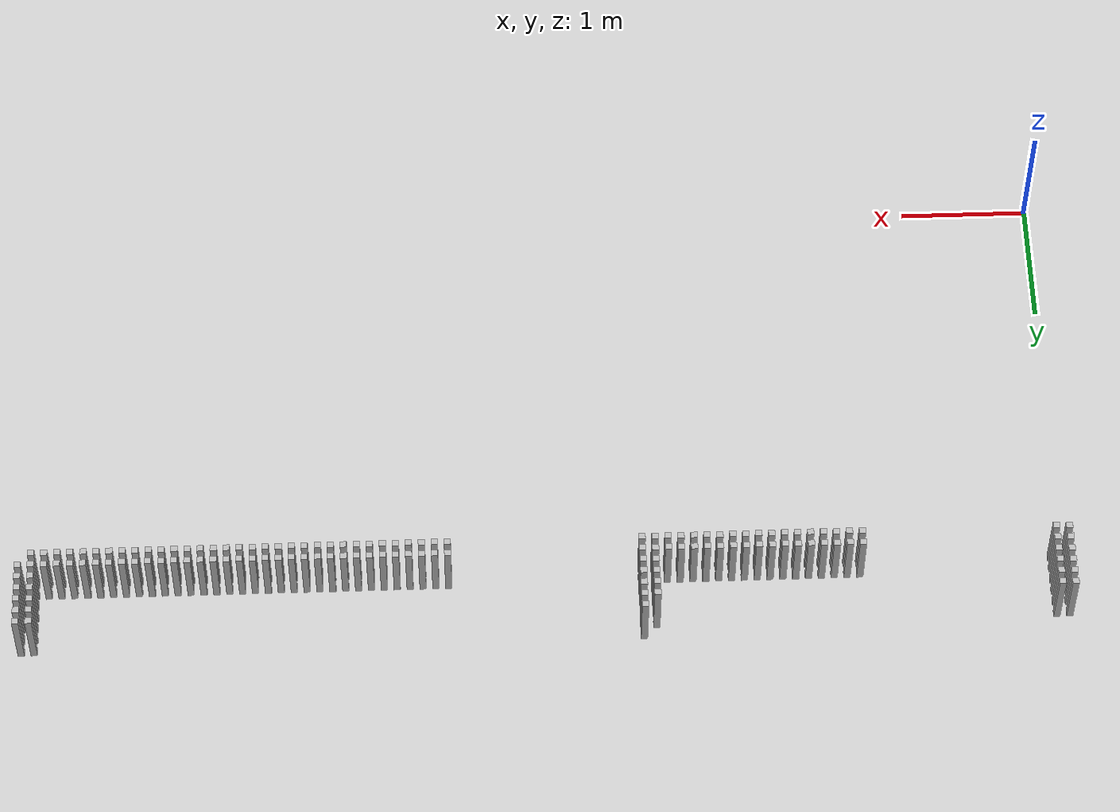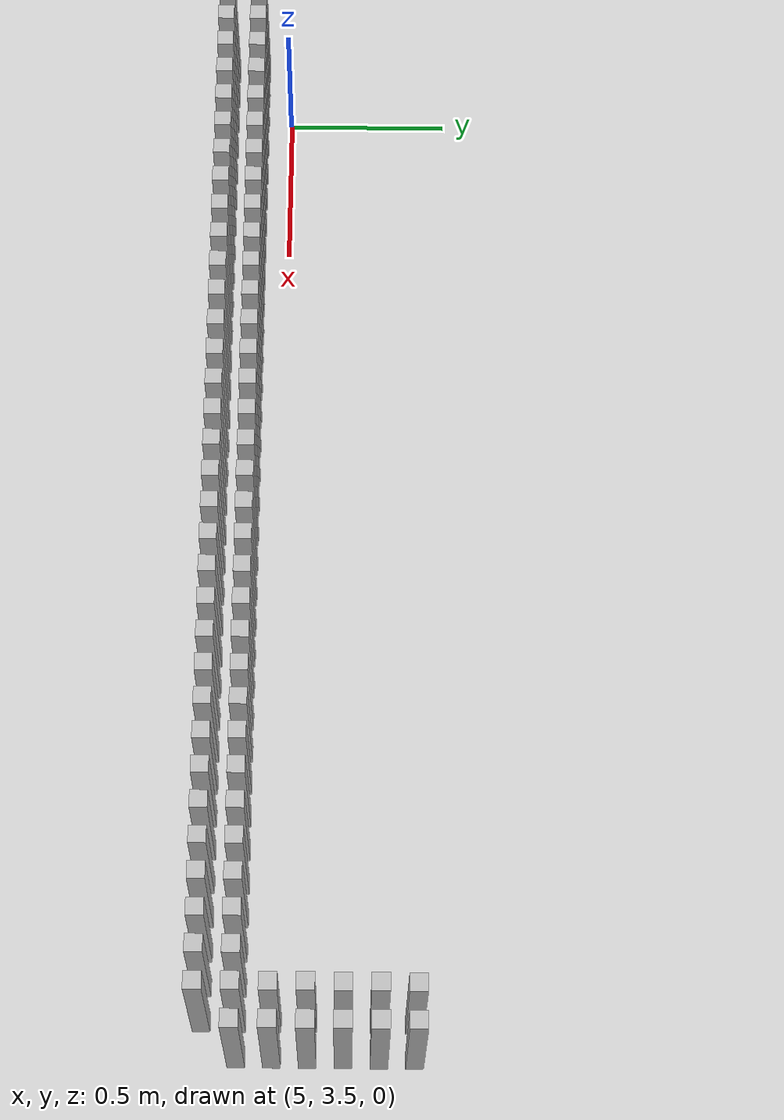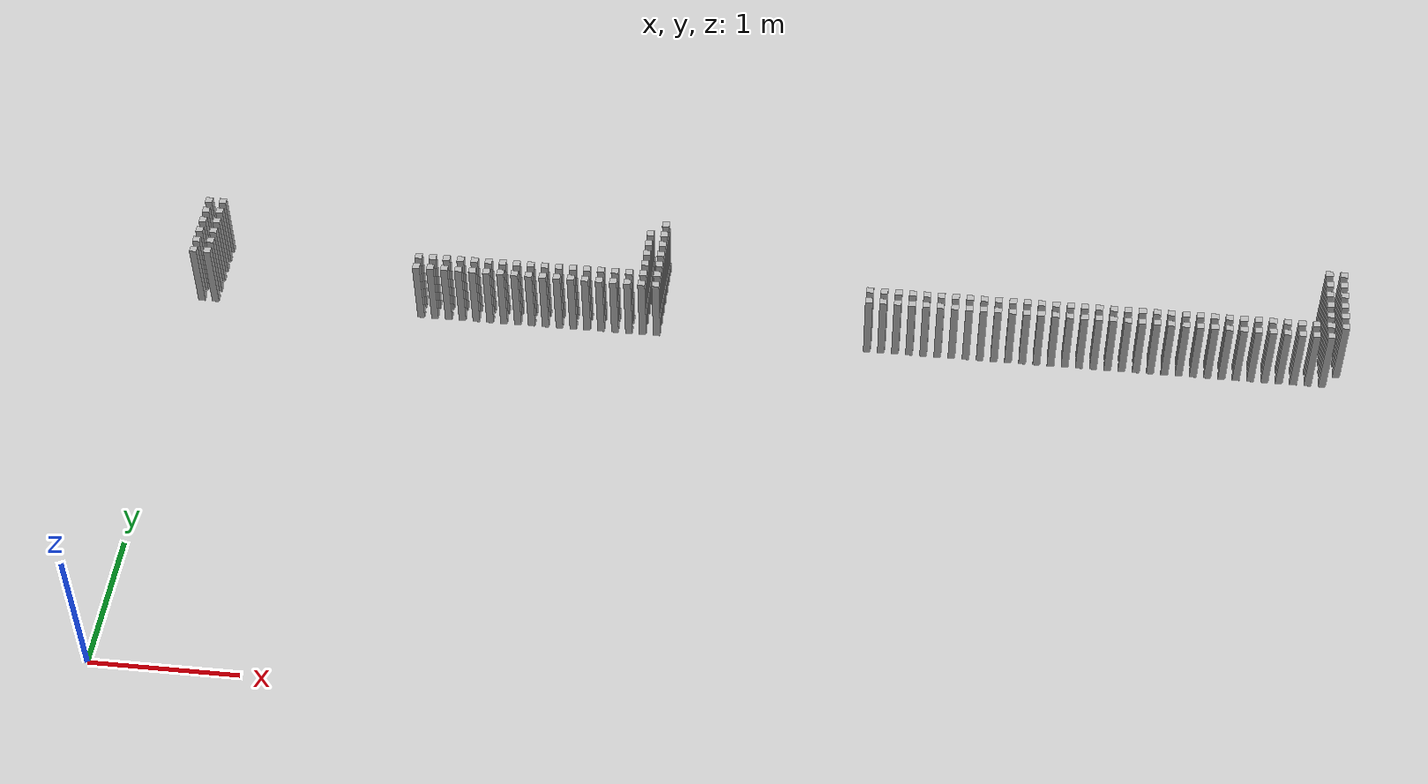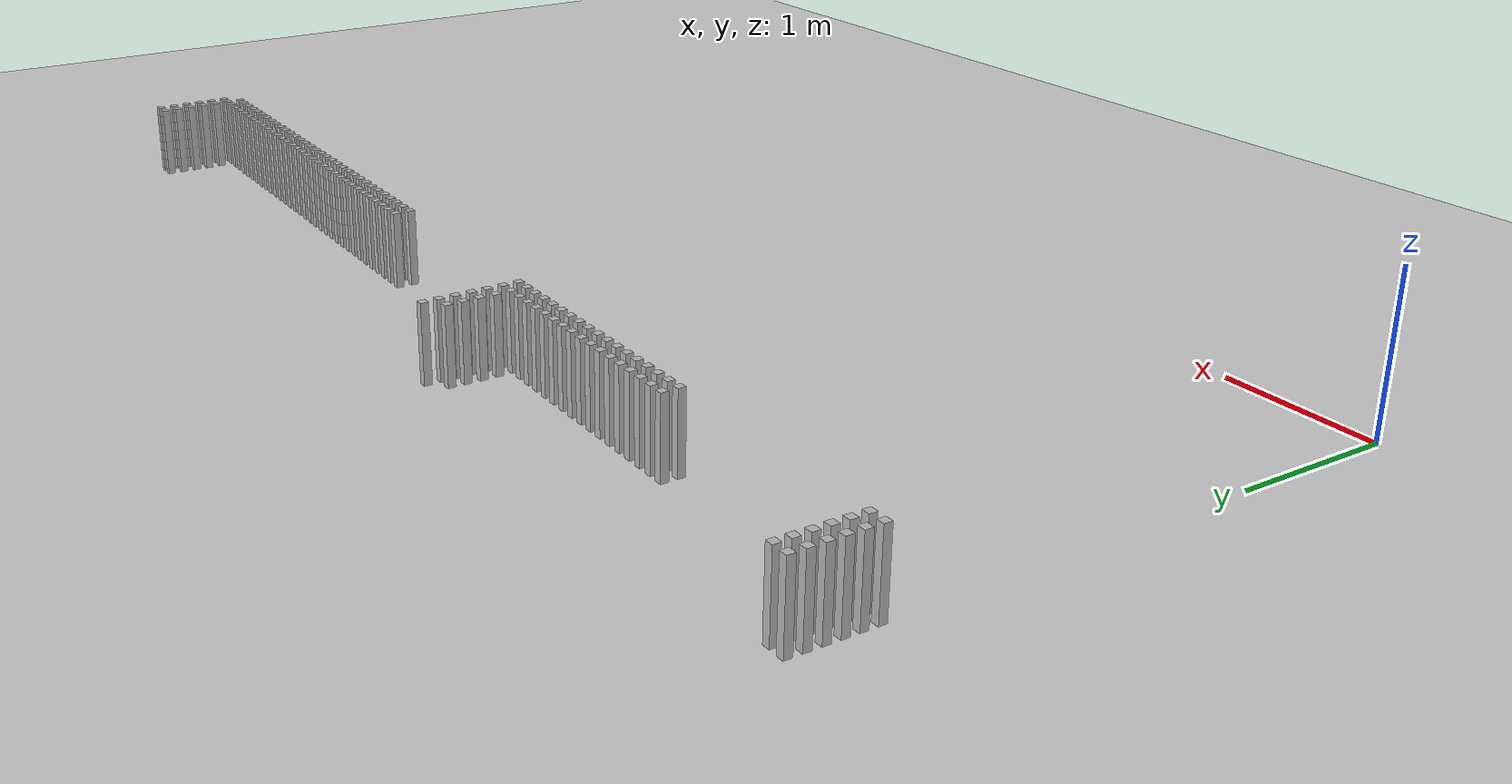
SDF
<sdf version="1.6">
 <world name="default_world">
  <include><uri>model://sun</uri></include>
  <include><uri>model://ground_plane</uri></include>
  <model name="wall_549">
   <static>true</static>
   <link name="link">
    <collision name="collision"><geometry><box><size>0.05 0.05 0.5</size></box></geometry></collision>
    <visual name="visual"><geometry><box><size>0.05 0.05 0.5</size></box></geometry></visual>
    <pose>3.3000000000000003 3.9000000000000004 0.25 0 0 0</pose>
   </link>
  </model>
  <model name="wall_550">
   <static>true</static>
   <link name="link">
    <collision name="collision"><geometry><box><size>0.05 0.05 0.5</size></box></geometry></collision>
    <visual name="visual"><geometry><box><size>0.05 0.05 0.5</size></box></geometry></visual>
    <pose>8.0 3.9000000000000004 0.25 0 0 0</pose>
   </link>
  </model>
  <model name="wall_551">
   <static>true</static>
   <link name="link">
    <collision name="collision"><geometry><box><size>0.05 0.05 0.5</size></box></geometry></collision>
    <visual name="visual"><geometry><box><size>0.05 0.05 0.5</size></box></geometry></visual>
    <pose>8.1 3.9000000000000004 0.25 0 0 0</pose>
   </link>
  </model>
  <model name="wall_552">
   <static>true</static>
   <link name="link">
    <collision name="collision"><geometry><box><size>0.05 0.05 0.5</size></box></geometry></collision>
    <visual name="visual"><geometry><box><size>0.05 0.05 0.5</size></box></geometry></visual>
    <pose>0.0 3.8000000000000003 0.25 0 0 0</pose>
   </link>
  </model>
  <model name="wall_553">
   <static>true</static>
   <link name="link">
    <collision name="collision"><geometry><box><size>0.05 0.05 0.5</size></box></geometry></collision>
    <visual name="visual"><geometry><box><size>0.05 0.05 0.5</size></box></geometry></visual>
    <pose>0.1 3.8000000000000003 0.25 0 0 0</pose>
   </link>
  </model>
  <model name="wall_554">
   <static>true</static>
   <link name="link">
    <collision name="collision"><geometry><box><size>0.05 0.05 0.5</size></box></geometry></collision>
    <visual name="visual"><geometry><box><size>0.05 0.05 0.5</size></box></geometry></visual>
    <pose>3.2 3.8000000000000003 0.25 0 0 0</pose>
   </link>
  </model>
  <model name="wall_555">
   <static>true</static>
   <link name="link">
    <collision name="collision"><geometry><box><size>0.05 0.05 0.5</size></box></geometry></collision>
    <visual name="visual"><geometry><box><size>0.05 0.05 0.5</size></box></geometry></visual>
    <pose>3.3000000000000003 3.8000000000000003 0.25 0 0 0</pose>
   </link>
  </model>
  <model name="wall_556">
   <static>true</static>
   <link name="link">
    <collision name="collision"><geometry><box><size>0.05 0.05 0.5</size></box></geometry></collision>
    <visual name="visual"><geometry><box><size>0.05 0.05 0.5</size></box></geometry></visual>
    <pose>8.0 3.8000000000000003 0.25 0 0 0</pose>
   </link>
  </model>
  <model name="wall_557">
   <static>true</static>
   <link name="link">
    <collision name="collision"><geometry><box><size>0.05 0.05 0.5</size></box></geometry></collision>
    <visual name="visual"><geometry><box><size>0.05 0.05 0.5</size></box></geometry></visual>
    <pose>8.1 3.8000000000000003 0.25 0 0 0</pose>
   </link>
  </model>
  <model name="wall_558">
   <static>true</static>
   <link name="link">
    <collision name="collision"><geometry><box><size>0.05 0.05 0.5</size></box></geometry></collision>
    <visual name="visual"><geometry><box><size>0.05 0.05 0.5</size></box></geometry></visual>
    <pose>0.0 3.7 0.25 0 0 0</pose>
   </link>
  </model>
  <model name="wall_559">
   <static>true</static>
   <link name="link">
    <collision name="collision"><geometry><box><size>0.05 0.05 0.5</size></box></geometry></collision>
    <visual name="visual"><geometry><box><size>0.05 0.05 0.5</size></box></geometry></visual>
    <pose>0.1 3.7 0.25 0 0 0</pose>
   </link>
  </model>
  <model name="wall_560">
   <static>true</static>
   <link name="link">
    <collision name="collision"><geometry><box><size>0.05 0.05 0.5</size></box></geometry></collision>
    <visual name="visual"><geometry><box><size>0.05 0.05 0.5</size></box></geometry></visual>
    <pose>3.2 3.7 0.25 0 0 0</pose>
   </link>
  </model>
  <model name="wall_561">
   <static>true</static>
   <link name="link">
    <collision name="collision"><geometry><box><size>0.05 0.05 0.5</size></box></geometry></collision>
    <visual name="visual"><geometry><box><size>0.05 0.05 0.5</size></box></geometry></visual>
    <pose>3.3000000000000003 3.7 0.25 0 0 0</pose>
   </link>
  </model>
  <model name="wall_562">
   <static>true</static>
   <link name="link">
    <collision name="collision"><geometry><box><size>0.05 0.05 0.5</size></box></geometry></collision>
    <visual name="visual"><geometry><box><size>0.05 0.05 0.5</size></box></geometry></visual>
    <pose>8.0 3.7 0.25 0 0 0</pose>
   </link>
  </model>
  <model name="wall_563">
   <static>true</static>
   <link name="link">
    <collision name="collision"><geometry><box><size>0.05 0.05 0.5</size></box></geometry></collision>
    <visual name="visual"><geometry><box><size>0.05 0.05 0.5</size></box></geometry></visual>
    <pose>8.1 3.7 0.25 0 0 0</pose>
   </link>
  </model>
  <model name="wall_564">
   <static>true</static>
   <link name="link">
    <collision name="collision"><geometry><box><size>0.05 0.05 0.5</size></box></geometry></collision>
    <visual name="visual"><geometry><box><size>0.05 0.05 0.5</size></box></geometry></visual>
    <pose>0.0 3.6 0.25 0 0 0</pose>
   </link>
  </model>
  <model name="wall_565">
   <static>true</static>
   <link name="link">
    <collision name="collision"><geometry><box><size>0.05 0.05 0.5</size></box></geometry></collision>
    <visual name="visual"><geometry><box><size>0.05 0.05 0.5</size></box></geometry></visual>
    <pose>0.1 3.6 0.25 0 0 0</pose>
   </link>
  </model>
  <model name="wall_566">
   <static>true</static>
   <link name="link">
    <collision name="collision"><geometry><box><size>0.05 0.05 0.5</size></box></geometry></collision>
    <visual name="visual"><geometry><box><size>0.05 0.05 0.5</size></box></geometry></visual>
    <pose>3.2 3.6 0.25 0 0 0</pose>
   </link>
  </model>
  <model name="wall_567">
   <static>true</static>
   <link name="link">
    <collision name="collision"><geometry><box><size>0.05 0.05 0.5</size></box></geometry></collision>
    <visual name="visual"><geometry><box><size>0.05 0.05 0.5</size></box></geometry></visual>
    <pose>3.3000000000000003 3.6 0.25 0 0 0</pose>
   </link>
  </model>
  <model name="wall_568">
   <static>true</static>
   <link name="link">
    <collision name="collision"><geometry><box><size>0.05 0.05 0.5</size></box></geometry></collision>
    <visual name="visual"><geometry><box><size>0.05 0.05 0.5</size></box></geometry></visual>
    <pose>8.0 3.6 0.25 0 0 0</pose>
   </link>
  </model>
  <model name="wall_569">
   <static>true</static>
   <link name="link">
    <collision name="collision"><geometry><box><size>0.05 0.05 0.5</size></box></geometry></collision>
    <visual name="visual"><geometry><box><size>0.05 0.05 0.5</size></box></geometry></visual>
    <pose>8.1 3.6 0.25 0 0 0</pose>
   </link>
  </model>
  <model name="wall_570">
   <static>true</static>
   <link name="link">
    <collision name="collision"><geometry><box><size>0.05 0.05 0.5</size></box></geometry></collision>
    <visual name="visual"><geometry><box><size>0.05 0.05 0.5</size></box></geometry></visual>
    <pose>0.0 3.5 0.25 0 0 0</pose>
   </link>
  </model>
  <model name="wall_571">
   <static>true</static>
   <link name="link">
    <collision name="collision"><geometry><box><size>0.05 0.05 0.5</size></box></geometry></collision>
    <visual name="visual"><geometry><box><size>0.05 0.05 0.5</size></box></geometry></visual>
    <pose>0.1 3.5 0.25 0 0 0</pose>
   </link>
  </model>
  <model name="wall_572">
   <static>true</static>
   <link name="link">
    <collision name="collision"><geometry><box><size>0.05 0.05 0.5</size></box></geometry></collision>
    <visual name="visual"><geometry><box><size>0.05 0.05 0.5</size></box></geometry></visual>
    <pose>3.2 3.5 0.25 0 0 0</pose>
   </link>
  </model>
  <model name="wall_573">
   <static>true</static>
   <link name="link">
    <collision name="collision"><geometry><box><size>0.05 0.05 0.5</size></box></geometry></collision>
    <visual name="visual"><geometry><box><size>0.05 0.05 0.5</size></box></geometry></visual>
    <pose>3.3000000000000003 3.5 0.25 0 0 0</pose>
   </link>
  </model>
  <model name="wall_574">
   <static>true</static>
   <link name="link">
    <collision name="collision"><geometry><box><size>0.05 0.05 0.5</size></box></geometry></collision>
    <visual name="visual"><geometry><box><size>0.05 0.05 0.5</size></box></geometry></visual>
    <pose>8.0 3.5 0.25 0 0 0</pose>
   </link>
  </model>
  <model name="wall_575">
   <static>true</static>
   <link name="link">
    <collision name="collision"><geometry><box><size>0.05 0.05 0.5</size></box></geometry></collision>
    <visual name="visual"><geometry><box><size>0.05 0.05 0.5</size></box></geometry></visual>
    <pose>8.1 3.5 0.25 0 0 0</pose>
   </link>
  </model>
  <model name="wall_576">
   <static>true</static>
   <link name="link">
    <collision name="collision"><geometry><box><size>0.05 0.05 0.5</size></box></geometry></collision>
    <visual name="visual"><geometry><box><size>0.05 0.05 0.5</size></box></geometry></visual>
    <pose>0.0 3.4000000000000004 0.25 0 0 0</pose>
   </link>
  </model>
  <model name="wall_577">
   <static>true</static>
   <link name="link">
    <collision name="collision"><geometry><box><size>0.05 0.05 0.5</size></box></geometry></collision>
    <visual name="visual"><geometry><box><size>0.05 0.05 0.5</size></box></geometry></visual>
    <pose>0.1 3.4000000000000004 0.25 0 0 0</pose>
   </link>
  </model>
  <model name="wall_578">
   <static>true</static>
   <link name="link">
    <collision name="collision"><geometry><box><size>0.05 0.05 0.5</size></box></geometry></collision>
    <visual name="visual"><geometry><box><size>0.05 0.05 0.5</size></box></geometry></visual>
    <pose>1.6 3.4000000000000004 0.25 0 0 0</pose>
   </link>
  </model>
  <model name="wall_579">
   <static>true</static>
   <link name="link">
    <collision name="collision"><geometry><box><size>0.05 0.05 0.5</size></box></geometry></collision>
    <visual name="visual"><geometry><box><size>0.05 0.05 0.5</size></box></geometry></visual>
    <pose>1.7000000000000002 3.4000000000000004 0.25 0 0 0</pose>
   </link>
  </model>
  <model name="wall_580">
   <static>true</static>
   <link name="link">
    <collision name="collision"><geometry><box><size>0.05 0.05 0.5</size></box></geometry></collision>
    <visual name="visual"><geometry><box><size>0.05 0.05 0.5</size></box></geometry></visual>
    <pose>1.8 3.4000000000000004 0.25 0 0 0</pose>
   </link>
  </model>
  <model name="wall_581">
   <static>true</static>
   <link name="link">
    <collision name="collision"><geometry><box><size>0.05 0.05 0.5</size></box></geometry></collision>
    <visual name="visual"><geometry><box><size>0.05 0.05 0.5</size></box></geometry></visual>
    <pose>1.9000000000000001 3.4000000000000004 0.25 0 0 0</pose>
   </link>
  </model>
  <model name="wall_582">
   <static>true</static>
   <link name="link">
    <collision name="collision"><geometry><box><size>0.05 0.05 0.5</size></box></geometry></collision>
    <visual name="visual"><geometry><box><size>0.05 0.05 0.5</size></box></geometry></visual>
    <pose>2.0 3.4000000000000004 0.25 0 0 0</pose>
   </link>
  </model>
  <model name="wall_583">
   <static>true</static>
   <link name="link">
    <collision name="collision"><geometry><box><size>0.05 0.05 0.5</size></box></geometry></collision>
    <visual name="visual"><geometry><box><size>0.05 0.05 0.5</size></box></geometry></visual>
    <pose>2.1 3.4000000000000004 0.25 0 0 0</pose>
   </link>
  </model>
  <model name="wall_584">
   <static>true</static>
   <link name="link">
    <collision name="collision"><geometry><box><size>0.05 0.05 0.5</size></box></geometry></collision>
    <visual name="visual"><geometry><box><size>0.05 0.05 0.5</size></box></geometry></visual>
    <pose>2.2 3.4000000000000004 0.25 0 0 0</pose>
   </link>
  </model>
  <model name="wall_585">
   <static>true</static>
   <link name="link">
    <collision name="collision"><geometry><box><size>0.05 0.05 0.5</size></box></geometry></collision>
    <visual name="visual"><geometry><box><size>0.05 0.05 0.5</size></box></geometry></visual>
    <pose>2.3000000000000003 3.4000000000000004 0.25 0 0 0</pose>
   </link>
  </model>
  <model name="wall_586">
   <static>true</static>
   <link name="link">
    <collision name="collision"><geometry><box><size>0.05 0.05 0.5</size></box></geometry></collision>
    <visual name="visual"><geometry><box><size>0.05 0.05 0.5</size></box></geometry></visual>
    <pose>2.4000000000000004 3.4000000000000004 0.25 0 0 0</pose>
   </link>
  </model>
  <model name="wall_587">
   <static>true</static>
   <link name="link">
    <collision name="collision"><geometry><box><size>0.05 0.05 0.5</size></box></geometry></collision>
    <visual name="visual"><geometry><box><size>0.05 0.05 0.5</size></box></geometry></visual>
    <pose>2.5 3.4000000000000004 0.25 0 0 0</pose>
   </link>
  </model>
  <model name="wall_588">
   <static>true</static>
   <link name="link">
    <collision name="collision"><geometry><box><size>0.05 0.05 0.5</size></box></geometry></collision>
    <visual name="visual"><geometry><box><size>0.05 0.05 0.5</size></box></geometry></visual>
    <pose>2.6 3.4000000000000004 0.25 0 0 0</pose>
   </link>
  </model>
  <model name="wall_589">
   <static>true</static>
   <link name="link">
    <collision name="collision"><geometry><box><size>0.05 0.05 0.5</size></box></geometry></collision>
    <visual name="visual"><geometry><box><size>0.05 0.05 0.5</size></box></geometry></visual>
    <pose>2.7 3.4000000000000004 0.25 0 0 0</pose>
   </link>
  </model>
  <model name="wall_590">
   <static>true</static>
   <link name="link">
    <collision name="collision"><geometry><box><size>0.05 0.05 0.5</size></box></geometry></collision>
    <visual name="visual"><geometry><box><size>0.05 0.05 0.5</size></box></geometry></visual>
    <pose>2.8000000000000003 3.4000000000000004 0.25 0 0 0</pose>
   </link>
  </model>
  <model name="wall_591">
   <static>true</static>
   <link name="link">
    <collision name="collision"><geometry><box><size>0.05 0.05 0.5</size></box></geometry></collision>
    <visual name="visual"><geometry><box><size>0.05 0.05 0.5</size></box></geometry></visual>
    <pose>2.9000000000000004 3.4000000000000004 0.25 0 0 0</pose>
   </link>
  </model>
  <model name="wall_592">
   <static>true</static>
   <link name="link">
    <collision name="collision"><geometry><box><size>0.05 0.05 0.5</size></box></geometry></collision>
    <visual name="visual"><geometry><box><size>0.05 0.05 0.5</size></box></geometry></visual>
    <pose>3.0 3.4000000000000004 0.25 0 0 0</pose>
   </link>
  </model>
  <model name="wall_593">
   <static>true</static>
   <link name="link">
    <collision name="collision"><geometry><box><size>0.05 0.05 0.5</size></box></geometry></collision>
    <visual name="visual"><geometry><box><size>0.05 0.05 0.5</size></box></geometry></visual>
    <pose>3.1 3.4000000000000004 0.25 0 0 0</pose>
   </link>
  </model>
  <model name="wall_594">
   <static>true</static>
   <link name="link">
    <collision name="collision"><geometry><box><size>0.05 0.05 0.5</size></box></geometry></collision>
    <visual name="visual"><geometry><box><size>0.05 0.05 0.5</size></box></geometry></visual>
    <pose>3.2 3.4000000000000004 0.25 0 0 0</pose>
   </link>
  </model>
  <model name="wall_595">
   <static>true</static>
   <link name="link">
    <collision name="collision"><geometry><box><size>0.05 0.05 0.5</size></box></geometry></collision>
    <visual name="visual"><geometry><box><size>0.05 0.05 0.5</size></box></geometry></visual>
    <pose>3.3000000000000003 3.4000000000000004 0.25 0 0 0</pose>
   </link>
  </model>
  <model name="wall_596">
   <static>true</static>
   <link name="link">
    <collision name="collision"><geometry><box><size>0.05 0.05 0.5</size></box></geometry></collision>
    <visual name="visual"><geometry><box><size>0.05 0.05 0.5</size></box></geometry></visual>
    <pose>4.800000000000001 3.4000000000000004 0.25 0 0 0</pose>
   </link>
  </model>
  <model name="wall_597">
   <static>true</static>
   <link name="link">
    <collision name="collision"><geometry><box><size>0.05 0.05 0.5</size></box></geometry></collision>
    <visual name="visual"><geometry><box><size>0.05 0.05 0.5</size></box></geometry></visual>
    <pose>4.9 3.4000000000000004 0.25 0 0 0</pose>
   </link>
  </model>
  <model name="wall_598">
   <static>true</static>
   <link name="link">
    <collision name="collision"><geometry><box><size>0.05 0.05 0.5</size></box></geometry></collision>
    <visual name="visual"><geometry><box><size>0.05 0.05 0.5</size></box></geometry></visual>
    <pose>5.0 3.4000000000000004 0.25 0 0 0</pose>
   </link>
  </model>
  <model name="wall_599">
   <static>true</static>
   <link name="link">
    <collision name="collision"><geometry><box><size>0.05 0.05 0.5</size></box></geometry></collision>
    <visual name="visual"><geometry><box><size>0.05 0.05 0.5</size></box></geometry></visual>
    <pose>5.1000000000000005 3.4000000000000004 0.25 0 0 0</pose>
   </link>
  </model>
  <model name="wall_600">
   <static>true</static>
   <link name="link">
    <collision name="collision"><geometry><box><size>0.05 0.05 0.5</size></box></geometry></collision>
    <visual name="visual"><geometry><box><size>0.05 0.05 0.5</size></box></geometry></visual>
    <pose>5.2 3.4000000000000004 0.25 0 0 0</pose>
   </link>
  </model>
  <model name="wall_601">
   <static>true</static>
   <link name="link">
    <collision name="collision"><geometry><box><size>0.05 0.05 0.5</size></box></geometry></collision>
    <visual name="visual"><geometry><box><size>0.05 0.05 0.5</size></box></geometry></visual>
    <pose>5.300000000000001 3.4000000000000004 0.25 0 0 0</pose>
   </link>
  </model>
  <model name="wall_602">
   <static>true</static>
   <link name="link">
    <collision name="collision"><geometry><box><size>0.05 0.05 0.5</size></box></geometry></collision>
    <visual name="visual"><geometry><box><size>0.05 0.05 0.5</size></box></geometry></visual>
    <pose>5.4 3.4000000000000004 0.25 0 0 0</pose>
   </link>
  </model>
  <model name="wall_603">
   <static>true</static>
   <link name="link">
    <collision name="collision"><geometry><box><size>0.05 0.05 0.5</size></box></geometry></collision>
    <visual name="visual"><geometry><box><size>0.05 0.05 0.5</size></box></geometry></visual>
    <pose>5.5 3.4000000000000004 0.25 0 0 0</pose>
   </link>
  </model>
  <model name="wall_604">
   <static>true</static>
   <link name="link">
    <collision name="collision"><geometry><box><size>0.05 0.05 0.5</size></box></geometry></collision>
    <visual name="visual"><geometry><box><size>0.05 0.05 0.5</size></box></geometry></visual>
    <pose>5.6000000000000005 3.4000000000000004 0.25 0 0 0</pose>
   </link>
  </model>
  <model name="wall_605">
   <static>true</static>
   <link name="link">
    <collision name="collision"><geometry><box><size>0.05 0.05 0.5</size></box></geometry></collision>
    <visual name="visual"><geometry><box><size>0.05 0.05 0.5</size></box></geometry></visual>
    <pose>5.7 3.4000000000000004 0.25 0 0 0</pose>
   </link>
  </model>
  <model name="wall_606">
   <static>true</static>
   <link name="link">
    <collision name="collision"><geometry><box><size>0.05 0.05 0.5</size></box></geometry></collision>
    <visual name="visual"><geometry><box><size>0.05 0.05 0.5</size></box></geometry></visual>
    <pose>5.800000000000001 3.4000000000000004 0.25 0 0 0</pose>
   </link>
  </model>
  <model name="wall_607">
   <static>true</static>
   <link name="link">
    <collision name="collision"><geometry><box><size>0.05 0.05 0.5</size></box></geometry></collision>
    <visual name="visual"><geometry><box><size>0.05 0.05 0.5</size></box></geometry></visual>
    <pose>5.9 3.4000000000000004 0.25 0 0 0</pose>
   </link>
  </model>
  <model name="wall_608">
   <static>true</static>
   <link name="link">
    <collision name="collision"><geometry><box><size>0.05 0.05 0.5</size></box></geometry></collision>
    <visual name="visual"><geometry><box><size>0.05 0.05 0.5</size></box></geometry></visual>
    <pose>6.0 3.4000000000000004 0.25 0 0 0</pose>
   </link>
  </model>
  <model name="wall_609">
   <static>true</static>
   <link name="link">
    <collision name="collision"><geometry><box><size>0.05 0.05 0.5</size></box></geometry></collision>
    <visual name="visual"><geometry><box><size>0.05 0.05 0.5</size></box></geometry></visual>
    <pose>6.1000000000000005 3.4000000000000004 0.25 0 0 0</pose>
   </link>
  </model>
  <model name="wall_610">
   <static>true</static>
   <link name="link">
    <collision name="collision"><geometry><box><size>0.05 0.05 0.5</size></box></geometry></collision>
    <visual name="visual"><geometry><box><size>0.05 0.05 0.5</size></box></geometry></visual>
    <pose>6.2 3.4000000000000004 0.25 0 0 0</pose>
   </link>
  </model>
  <model name="wall_611">
   <static>true</static>
   <link name="link">
    <collision name="collision"><geometry><box><size>0.05 0.05 0.5</size></box></geometry></collision>
    <visual name="visual"><geometry><box><size>0.05 0.05 0.5</size></box></geometry></visual>
    <pose>6.300000000000001 3.4000000000000004 0.25 0 0 0</pose>
   </link>
  </model>
  <model name="wall_612">
   <static>true</static>
   <link name="link">
    <collision name="collision"><geometry><box><size>0.05 0.05 0.5</size></box></geometry></collision>
    <visual name="visual"><geometry><box><size>0.05 0.05 0.5</size></box></geometry></visual>
    <pose>6.4 3.4000000000000004 0.25 0 0 0</pose>
   </link>
  </model>
  <model name="wall_613">
   <static>true</static>
   <link name="link">
    <collision name="collision"><geometry><box><size>0.05 0.05 0.5</size></box></geometry></collision>
    <visual name="visual"><geometry><box><size>0.05 0.05 0.5</size></box></geometry></visual>
    <pose>6.5 3.4000000000000004 0.25 0 0 0</pose>
   </link>
  </model>
  <model name="wall_614">
   <static>true</static>
   <link name="link">
    <collision name="collision"><geometry><box><size>0.05 0.05 0.5</size></box></geometry></collision>
    <visual name="visual"><geometry><box><size>0.05 0.05 0.5</size></box></geometry></visual>
    <pose>6.6000000000000005 3.4000000000000004 0.25 0 0 0</pose>
   </link>
  </model>
  <model name="wall_615">
   <static>true</static>
   <link name="link">
    <collision name="collision"><geometry><box><size>0.05 0.05 0.5</size></box></geometry></collision>
    <visual name="visual"><geometry><box><size>0.05 0.05 0.5</size></box></geometry></visual>
    <pose>6.7 3.4000000000000004 0.25 0 0 0</pose>
   </link>
  </model>
  <model name="wall_616">
   <static>true</static>
   <link name="link">
    <collision name="collision"><geometry><box><size>0.05 0.05 0.5</size></box></geometry></collision>
    <visual name="visual"><geometry><box><size>0.05 0.05 0.5</size></box></geometry></visual>
    <pose>6.800000000000001 3.4000000000000004 0.25 0 0 0</pose>
   </link>
  </model>
  <model name="wall_617">
   <static>true</static>
   <link name="link">
    <collision name="collision"><geometry><box><size>0.05 0.05 0.5</size></box></geometry></collision>
    <visual name="visual"><geometry><box><size>0.05 0.05 0.5</size></box></geometry></visual>
    <pose>6.9 3.4000000000000004 0.25 0 0 0</pose>
   </link>
  </model>
  <model name="wall_618">
   <static>true</static>
   <link name="link">
    <collision name="collision"><geometry><box><size>0.05 0.05 0.5</size></box></geometry></collision>
    <visual name="visual"><geometry><box><size>0.05 0.05 0.5</size></box></geometry></visual>
    <pose>7.0 3.4000000000000004 0.25 0 0 0</pose>
   </link>
  </model>
  <model name="wall_619">
   <static>true</static>
   <link name="link">
    <collision name="collision"><geometry><box><size>0.05 0.05 0.5</size></box></geometry></collision>
    <visual name="visual"><geometry><box><size>0.05 0.05 0.5</size></box></geometry></visual>
    <pose>7.1000000000000005 3.4000000000000004 0.25 0 0 0</pose>
   </link>
  </model>
  <model name="wall_620">
   <static>true</static>
   <link name="link">
    <collision name="collision"><geometry><box><size>0.05 0.05 0.5</size></box></geometry></collision>
    <visual name="visual"><geometry><box><size>0.05 0.05 0.5</size></box></geometry></visual>
    <pose>7.2 3.4000000000000004 0.25 0 0 0</pose>
   </link>
  </model>
  <model name="wall_621">
   <static>true</static>
   <link name="link">
    <collision name="collision"><geometry><box><size>0.05 0.05 0.5</size></box></geometry></collision>
    <visual name="visual"><geometry><box><size>0.05 0.05 0.5</size></box></geometry></visual>
    <pose>7.300000000000001 3.4000000000000004 0.25 0 0 0</pose>
   </link>
  </model>
  <model name="wall_622">
   <static>true</static>
   <link name="link">
    <collision name="collision"><geometry><box><size>0.05 0.05 0.5</size></box></geometry></collision>
    <visual name="visual"><geometry><box><size>0.05 0.05 0.5</size></box></geometry></visual>
    <pose>7.4 3.4000000000000004 0.25 0 0 0</pose>
   </link>
  </model>
  <model name="wall_623">
   <static>true</static>
   <link name="link">
    <collision name="collision"><geometry><box><size>0.05 0.05 0.5</size></box></geometry></collision>
    <visual name="visual"><geometry><box><size>0.05 0.05 0.5</size></box></geometry></visual>
    <pose>7.5 3.4000000000000004 0.25 0 0 0</pose>
   </link>
  </model>
  <model name="wall_624">
   <static>true</static>
   <link name="link">
    <collision name="collision"><geometry><box><size>0.05 0.05 0.5</size></box></geometry></collision>
    <visual name="visual"><geometry><box><size>0.05 0.05 0.5</size></box></geometry></visual>
    <pose>7.6000000000000005 3.4000000000000004 0.25 0 0 0</pose>
   </link>
  </model>
  <model name="wall_625">
   <static>true</static>
   <link name="link">
    <collision name="collision"><geometry><box><size>0.05 0.05 0.5</size></box></geometry></collision>
    <visual name="visual"><geometry><box><size>0.05 0.05 0.5</size></box></geometry></visual>
    <pose>7.7 3.4000000000000004 0.25 0 0 0</pose>
   </link>
  </model>
  <model name="wall_626">
   <static>true</static>
   <link name="link">
    <collision name="collision"><geometry><box><size>0.05 0.05 0.5</size></box></geometry></collision>
    <visual name="visual"><geometry><box><size>0.05 0.05 0.5</size></box></geometry></visual>
    <pose>7.800000000000001 3.4000000000000004 0.25 0 0 0</pose>
   </link>
  </model>
  <model name="wall_627">
   <static>true</static>
   <link name="link">
    <collision name="collision"><geometry><box><size>0.05 0.05 0.5</size></box></geometry></collision>
    <visual name="visual"><geometry><box><size>0.05 0.05 0.5</size></box></geometry></visual>
    <pose>7.9 3.4000000000000004 0.25 0 0 0</pose>
   </link>
  </model>
  <model name="wall_628">
   <static>true</static>
   <link name="link">
    <collision name="collision"><geometry><box><size>0.05 0.05 0.5</size></box></geometry></collision>
    <visual name="visual"><geometry><box><size>0.05 0.05 0.5</size></box></geometry></visual>
    <pose>8.0 3.4000000000000004 0.25 0 0 0</pose>
   </link>
  </model>
  <model name="wall_629">
   <static>true</static>
   <link name="link">
    <collision name="collision"><geometry><box><size>0.05 0.05 0.5</size></box></geometry></collision>
    <visual name="visual"><geometry><box><size>0.05 0.05 0.5</size></box></geometry></visual>
    <pose>8.1 3.4000000000000004 0.25 0 0 0</pose>
   </link>
  </model>
  <model name="wall_630">
   <static>true</static>
   <link name="link">
    <collision name="collision"><geometry><box><size>0.05 0.05 0.5</size></box></geometry></collision>
    <visual name="visual"><geometry><box><size>0.05 0.05 0.5</size></box></geometry></visual>
    <pose>0.0 3.3000000000000003 0.25 0 0 0</pose>
   </link>
  </model>
  <model name="wall_631">
   <static>true</static>
   <link name="link">
    <collision name="collision"><geometry><box><size>0.05 0.05 0.5</size></box></geometry></collision>
    <visual name="visual"><geometry><box><size>0.05 0.05 0.5</size></box></geometry></visual>
    <pose>0.1 3.3000000000000003 0.25 0 0 0</pose>
   </link>
  </model>
  <model name="wall_632">
   <static>true</static>
   <link name="link">
    <collision name="collision"><geometry><box><size>0.05 0.05 0.5</size></box></geometry></collision>
    <visual name="visual"><geometry><box><size>0.05 0.05 0.5</size></box></geometry></visual>
    <pose>1.6 3.3000000000000003 0.25 0 0 0</pose>
   </link>
  </model>
  <model name="wall_633">
   <static>true</static>
   <link name="link">
    <collision name="collision"><geometry><box><size>0.05 0.05 0.5</size></box></geometry></collision>
    <visual name="visual"><geometry><box><size>0.05 0.05 0.5</size></box></geometry></visual>
    <pose>1.7000000000000002 3.3000000000000003 0.25 0 0 0</pose>
   </link>
  </model>
  <model name="wall_634">
   <static>true</static>
   <link name="link">
    <collision name="collision"><geometry><box><size>0.05 0.05 0.5</size></box></geometry></collision>
    <visual name="visual"><geometry><box><size>0.05 0.05 0.5</size></box></geometry></visual>
    <pose>1.8 3.3000000000000003 0.25 0 0 0</pose>
   </link>
  </model>
  <model name="wall_635">
   <static>true</static>
   <link name="link">
    <collision name="collision"><geometry><box><size>0.05 0.05 0.5</size></box></geometry></collision>
    <visual name="visual"><geometry><box><size>0.05 0.05 0.5</size></box></geometry></visual>
    <pose>1.9000000000000001 3.3000000000000003 0.25 0 0 0</pose>
   </link>
  </model>
  <model name="wall_636">
   <static>true</static>
   <link name="link">
    <collision name="collision"><geometry><box><size>0.05 0.05 0.5</size></box></geometry></collision>
    <visual name="visual"><geometry><box><size>0.05 0.05 0.5</size></box></geometry></visual>
    <pose>2.0 3.3000000000000003 0.25 0 0 0</pose>
   </link>
  </model>
  <model name="wall_637">
   <static>true</static>
   <link name="link">
    <collision name="collision"><geometry><box><size>0.05 0.05 0.5</size></box></geometry></collision>
    <visual name="visual"><geometry><box><size>0.05 0.05 0.5</size></box></geometry></visual>
    <pose>2.1 3.3000000000000003 0.25 0 0 0</pose>
   </link>
  </model>
  <model name="wall_638">
   <static>true</static>
   <link name="link">
    <collision name="collision"><geometry><box><size>0.05 0.05 0.5</size></box></geometry></collision>
    <visual name="visual"><geometry><box><size>0.05 0.05 0.5</size></box></geometry></visual>
    <pose>2.2 3.3000000000000003 0.25 0 0 0</pose>
   </link>
  </model>
  <model name="wall_639">
   <static>true</static>
   <link name="link">
    <collision name="collision"><geometry><box><size>0.05 0.05 0.5</size></box></geometry></collision>
    <visual name="visual"><geometry><box><size>0.05 0.05 0.5</size></box></geometry></visual>
    <pose>2.3000000000000003 3.3000000000000003 0.25 0 0 0</pose>
   </link>
  </model>
  <model name="wall_640">
   <static>true</static>
   <link name="link">
    <collision name="collision"><geometry><box><size>0.05 0.05 0.5</size></box></geometry></collision>
    <visual name="visual"><geometry><box><size>0.05 0.05 0.5</size></box></geometry></visual>
    <pose>2.4000000000000004 3.3000000000000003 0.25 0 0 0</pose>
   </link>
  </model>
  <model name="wall_641">
   <static>true</static>
   <link name="link">
    <collision name="collision"><geometry><box><size>0.05 0.05 0.5</size></box></geometry></collision>
    <visual name="visual"><geometry><box><size>0.05 0.05 0.5</size></box></geometry></visual>
    <pose>2.5 3.3000000000000003 0.25 0 0 0</pose>
   </link>
  </model>
  <model name="wall_642">
   <static>true</static>
   <link name="link">
    <collision name="collision"><geometry><box><size>0.05 0.05 0.5</size></box></geometry></collision>
    <visual name="visual"><geometry><box><size>0.05 0.05 0.5</size></box></geometry></visual>
    <pose>2.6 3.3000000000000003 0.25 0 0 0</pose>
   </link>
  </model>
  <model name="wall_643">
   <static>true</static>
   <link name="link">
    <collision name="collision"><geometry><box><size>0.05 0.05 0.5</size></box></geometry></collision>
    <visual name="visual"><geometry><box><size>0.05 0.05 0.5</size></box></geometry></visual>
    <pose>2.7 3.3000000000000003 0.25 0 0 0</pose>
   </link>
  </model>
  <model name="wall_644">
   <static>true</static>
   <link name="link">
    <collision name="collision"><geometry><box><size>0.05 0.05 0.5</size></box></geometry></collision>
    <visual name="visual"><geometry><box><size>0.05 0.05 0.5</size></box></geometry></visual>
    <pose>2.8000000000000003 3.3000000000000003 0.25 0 0 0</pose>
   </link>
  </model>
  <model name="wall_645">
   <static>true</static>
   <link name="link">
    <collision name="collision"><geometry><box><size>0.05 0.05 0.5</size></box></geometry></collision>
    <visual name="visual"><geometry><box><size>0.05 0.05 0.5</size></box></geometry></visual>
    <pose>2.9000000000000004 3.3000000000000003 0.25 0 0 0</pose>
   </link>
  </model>
  <model name="wall_646">
   <static>true</static>
   <link name="link">
    <collision name="collision"><geometry><box><size>0.05 0.05 0.5</size></box></geometry></collision>
    <visual name="visual"><geometry><box><size>0.05 0.05 0.5</size></box></geometry></visual>
    <pose>3.0 3.3000000000000003 0.25 0 0 0</pose>
   </link>
  </model>
  <model name="wall_647">
   <static>true</static>
   <link name="link">
    <collision name="collision"><geometry><box><size>0.05 0.05 0.5</size></box></geometry></collision>
    <visual name="visual"><geometry><box><size>0.05 0.05 0.5</size></box></geometry></visual>
    <pose>3.1 3.3000000000000003 0.25 0 0 0</pose>
   </link>
  </model>
  <model name="wall_648">
   <static>true</static>
   <link name="link">
    <collision name="collision"><geometry><box><size>0.05 0.05 0.5</size></box></geometry></collision>
    <visual name="visual"><geometry><box><size>0.05 0.05 0.5</size></box></geometry></visual>
    <pose>3.2 3.3000000000000003 0.25 0 0 0</pose>
   </link>
  </model>
  <model name="wall_649">
   <static>true</static>
   <link name="link">
    <collision name="collision"><geometry><box><size>0.05 0.05 0.5</size></box></geometry></collision>
    <visual name="visual"><geometry><box><size>0.05 0.05 0.5</size></box></geometry></visual>
    <pose>3.3000000000000003 3.3000000000000003 0.25 0 0 0</pose>
   </link>
  </model>
  <model name="wall_650">
   <static>true</static>
   <link name="link">
    <collision name="collision"><geometry><box><size>0.05 0.05 0.5</size></box></geometry></collision>
    <visual name="visual"><geometry><box><size>0.05 0.05 0.5</size></box></geometry></visual>
    <pose>4.800000000000001 3.3000000000000003 0.25 0 0 0</pose>
   </link>
  </model>
  <model name="wall_651">
   <static>true</static>
   <link name="link">
    <collision name="collision"><geometry><box><size>0.05 0.05 0.5</size></box></geometry></collision>
    <visual name="visual"><geometry><box><size>0.05 0.05 0.5</size></box></geometry></visual>
    <pose>4.9 3.3000000000000003 0.25 0 0 0</pose>
   </link>
  </model>
  <model name="wall_652">
   <static>true</static>
   <link name="link">
    <collision name="collision"><geometry><box><size>0.05 0.05 0.5</size></box></geometry></collision>
    <visual name="visual"><geometry><box><size>0.05 0.05 0.5</size></box></geometry></visual>
    <pose>5.0 3.3000000000000003 0.25 0 0 0</pose>
   </link>
  </model>
  <model name="wall_653">
   <static>true</static>
   <link name="link">
    <collision name="collision"><geometry><box><size>0.05 0.05 0.5</size></box></geometry></collision>
    <visual name="visual"><geometry><box><size>0.05 0.05 0.5</size></box></geometry></visual>
    <pose>5.1000000000000005 3.3000000000000003 0.25 0 0 0</pose>
   </link>
  </model>
  <model name="wall_654">
   <static>true</static>
   <link name="link">
    <collision name="collision"><geometry><box><size>0.05 0.05 0.5</size></box></geometry></collision>
    <visual name="visual"><geometry><box><size>0.05 0.05 0.5</size></box></geometry></visual>
    <pose>5.2 3.3000000000000003 0.25 0 0 0</pose>
   </link>
  </model>
  <model name="wall_655">
   <static>true</static>
   <link name="link">
    <collision name="collision"><geometry><box><size>0.05 0.05 0.5</size></box></geometry></collision>
    <visual name="visual"><geometry><box><size>0.05 0.05 0.5</size></box></geometry></visual>
    <pose>5.300000000000001 3.3000000000000003 0.25 0 0 0</pose>
   </link>
  </model>
  <model name="wall_656">
   <static>true</static>
   <link name="link">
    <collision name="collision"><geometry><box><size>0.05 0.05 0.5</size></box></geometry></collision>
    <visual name="visual"><geometry><box><size>0.05 0.05 0.5</size></box></geometry></visual>
    <pose>5.4 3.3000000000000003 0.25 0 0 0</pose>
   </link>
  </model>
  <model name="wall_657">
   <static>true</static>
   <link name="link">
    <collision name="collision"><geometry><box><size>0.05 0.05 0.5</size></box></geometry></collision>
    <visual name="visual"><geometry><box><size>0.05 0.05 0.5</size></box></geometry></visual>
    <pose>5.5 3.3000000000000003 0.25 0 0 0</pose>
   </link>
  </model>
  <model name="wall_658">
   <static>true</static>
   <link name="link">
    <collision name="collision"><geometry><box><size>0.05 0.05 0.5</size></box></geometry></collision>
    <visual name="visual"><geometry><box><size>0.05 0.05 0.5</size></box></geometry></visual>
    <pose>5.6000000000000005 3.3000000000000003 0.25 0 0 0</pose>
   </link>
  </model>
  <model name="wall_659">
   <static>true</static>
   <link name="link">
    <collision name="collision"><geometry><box><size>0.05 0.05 0.5</size></box></geometry></collision>
    <visual name="visual"><geometry><box><size>0.05 0.05 0.5</size></box></geometry></visual>
    <pose>5.7 3.3000000000000003 0.25 0 0 0</pose>
   </link>
  </model>
  <model name="wall_660">
   <static>true</static>
   <link name="link">
    <collision name="collision"><geometry><box><size>0.05 0.05 0.5</size></box></geometry></collision>
    <visual name="visual"><geometry><box><size>0.05 0.05 0.5</size></box></geometry></visual>
    <pose>5.800000000000001 3.3000000000000003 0.25 0 0 0</pose>
   </link>
  </model>
  <model name="wall_661">
   <static>true</static>
   <link name="link">
    <collision name="collision"><geometry><box><size>0.05 0.05 0.5</size></box></geometry></collision>
    <visual name="visual"><geometry><box><size>0.05 0.05 0.5</size></box></geometry></visual>
    <pose>5.9 3.3000000000000003 0.25 0 0 0</pose>
   </link>
  </model>
  <model name="wall_662">
   <static>true</static>
   <link name="link">
    <collision name="collision"><geometry><box><size>0.05 0.05 0.5</size></box></geometry></collision>
    <visual name="visual"><geometry><box><size>0.05 0.05 0.5</size></box></geometry></visual>
    <pose>6.0 3.3000000000000003 0.25 0 0 0</pose>
   </link>
  </model>
  <model name="wall_663">
   <static>true</static>
   <link name="link">
    <collision name="collision"><geometry><box><size>0.05 0.05 0.5</size></box></geometry></collision>
    <visual name="visual"><geometry><box><size>0.05 0.05 0.5</size></box></geometry></visual>
    <pose>6.1000000000000005 3.3000000000000003 0.25 0 0 0</pose>
   </link>
  </model>
  <model name="wall_664">
   <static>true</static>
   <link name="link">
    <collision name="collision"><geometry><box><size>0.05 0.05 0.5</size></box></geometry></collision>
    <visual name="visual"><geometry><box><size>0.05 0.05 0.5</size></box></geometry></visual>
    <pose>6.2 3.3000000000000003 0.25 0 0 0</pose>
   </link>
  </model>
  <model name="wall_665">
   <static>true</static>
   <link name="link">
    <collision name="collision"><geometry><box><size>0.05 0.05 0.5</size></box></geometry></collision>
    <visual name="visual"><geometry><box><size>0.05 0.05 0.5</size></box></geometry></visual>
    <pose>6.300000000000001 3.3000000000000003 0.25 0 0 0</pose>
   </link>
  </model>
  <model name="wall_666">
   <static>true</static>
   <link name="link">
    <collision name="collision"><geometry><box><size>0.05 0.05 0.5</size></box></geometry></collision>
    <visual name="visual"><geometry><box><size>0.05 0.05 0.5</size></box></geometry></visual>
    <pose>6.4 3.3000000000000003 0.25 0 0 0</pose>
   </link>
  </model>
  <model name="wall_667">
   <static>true</static>
   <link name="link">
    <collision name="collision"><geometry><box><size>0.05 0.05 0.5</size></box></geometry></collision>
    <visual name="visual"><geometry><box><size>0.05 0.05 0.5</size></box></geometry></visual>
    <pose>6.5 3.3000000000000003 0.25 0 0 0</pose>
   </link>
  </model>
  <model name="wall_668">
   <static>true</static>
   <link name="link">
    <collision name="collision"><geometry><box><size>0.05 0.05 0.5</size></box></geometry></collision>
    <visual name="visual"><geometry><box><size>0.05 0.05 0.5</size></box></geometry></visual>
    <pose>6.6000000000000005 3.3000000000000003 0.25 0 0 0</pose>
   </link>
  </model>
  <model name="wall_669">
   <static>true</static>
   <link name="link">
    <collision name="collision"><geometry><box><size>0.05 0.05 0.5</size></box></geometry></collision>
    <visual name="visual"><geometry><box><size>0.05 0.05 0.5</size></box></geometry></visual>
    <pose>6.7 3.3000000000000003 0.25 0 0 0</pose>
   </link>
  </model>
  <model name="wall_670">
   <static>true</static>
   <link name="link">
    <collision name="collision"><geometry><box><size>0.05 0.05 0.5</size></box></geometry></collision>
    <visual name="visual"><geometry><box><size>0.05 0.05 0.5</size></box></geometry></visual>
    <pose>6.800000000000001 3.3000000000000003 0.25 0 0 0</pose>
   </link>
  </model>
  <model name="wall_671">
   <static>true</static>
   <link name="link">
    <collision name="collision"><geometry><box><size>0.05 0.05 0.5</size></box></geometry></collision>
    <visual name="visual"><geometry><box><size>0.05 0.05 0.5</size></box></geometry></visual>
    <pose>6.9 3.3000000000000003 0.25 0 0 0</pose>
   </link>
  </model>
  <model name="wall_672">
   <static>true</static>
   <link name="link">
    <collision name="collision"><geometry><box><size>0.05 0.05 0.5</size></box></geometry></collision>
    <visual name="visual"><geometry><box><size>0.05 0.05 0.5</size></box></geometry></visual>
    <pose>7.0 3.3000000000000003 0.25 0 0 0</pose>
   </link>
  </model>
  <model name="wall_673">
   <static>true</static>
   <link name="link">
    <collision name="collision"><geometry><box><size>0.05 0.05 0.5</size></box></geometry></collision>
    <visual name="visual"><geometry><box><size>0.05 0.05 0.5</size></box></geometry></visual>
    <pose>7.1000000000000005 3.3000000000000003 0.25 0 0 0</pose>
   </link>
  </model>
  <model name="wall_674">
   <static>true</static>
   <link name="link">
    <collision name="collision"><geometry><box><size>0.05 0.05 0.5</size></box></geometry></collision>
    <visual name="visual"><geometry><box><size>0.05 0.05 0.5</size></box></geometry></visual>
    <pose>7.2 3.3000000000000003 0.25 0 0 0</pose>
   </link>
  </model>
  <model name="wall_675">
   <static>true</static>
   <link name="link">
    <collision name="collision"><geometry><box><size>0.05 0.05 0.5</size></box></geometry></collision>
    <visual name="visual"><geometry><box><size>0.05 0.05 0.5</size></box></geometry></visual>
    <pose>7.300000000000001 3.3000000000000003 0.25 0 0 0</pose>
   </link>
  </model>
  <model name="wall_676">
   <static>true</static>
   <link name="link">
    <collision name="collision"><geometry><box><size>0.05 0.05 0.5</size></box></geometry></collision>
    <visual name="visual"><geometry><box><size>0.05 0.05 0.5</size></box></geometry></visual>
    <pose>7.4 3.3000000000000003 0.25 0 0 0</pose>
   </link>
  </model>
  <model name="wall_677">
   <static>true</static>
   <link name="link">
    <collision name="collision"><geometry><box><size>0.05 0.05 0.5</size></box></geometry></collision>
    <visual name="visual"><geometry><box><size>0.05 0.05 0.5</size></box></geometry></visual>
    <pose>7.5 3.3000000000000003 0.25 0 0 0</pose>
   </link>
  </model>
  <model name="wall_678">
   <static>true</static>
   <link name="link">
    <collision name="collision"><geometry><box><size>0.05 0.05 0.5</size></box></geometry></collision>
    <visual name="visual"><geometry><box><size>0.05 0.05 0.5</size></box></geometry></visual>
    <pose>7.6000000000000005 3.3000000000000003 0.25 0 0 0</pose>
   </link>
  </model>
  <model name="wall_679">
   <static>true</static>
   <link name="link">
    <collision name="collision"><geometry><box><size>0.05 0.05 0.5</size></box></geometry></collision>
    <visual name="visual"><geometry><box><size>0.05 0.05 0.5</size></box></geometry></visual>
    <pose>7.7 3.3000000000000003 0.25 0 0 0</pose>
   </link>
  </model>
  <model name="wall_680">
   <static>true</static>
   <link name="link">
    <collision name="collision"><geometry><box><size>0.05 0.05 0.5</size></box></geometry></collision>
    <visual name="visual"><geometry><box><size>0.05 0.05 0.5</size></box></geometry></visual>
    <pose>7.800000000000001 3.3000000000000003 0.25 0 0 0</pose>
   </link>
  </model>
  <model name="wall_681">
   <static>true</static>
   <link name="link">
    <collision name="collision"><geometry><box><size>0.05 0.05 0.5</size></box></geometry></collision>
    <visual name="visual"><geometry><box><size>0.05 0.05 0.5</size></box></geometry></visual>
    <pose>7.9 3.3000000000000003 0.25 0 0 0</pose>
   </link>
  </model>
  <model name="wall_682">
   <static>true</static>
   <link name="link">
    <collision name="collision"><geometry><box><size>0.05 0.05 0.5</size></box></geometry></collision>
    <visual name="visual"><geometry><box><size>0.05 0.05 0.5</size></box></geometry></visual>
    <pose>8.0 3.3000000000000003 0.25 0 0 0</pose>
   </link>
  </model>
 </world>
</sdf>
